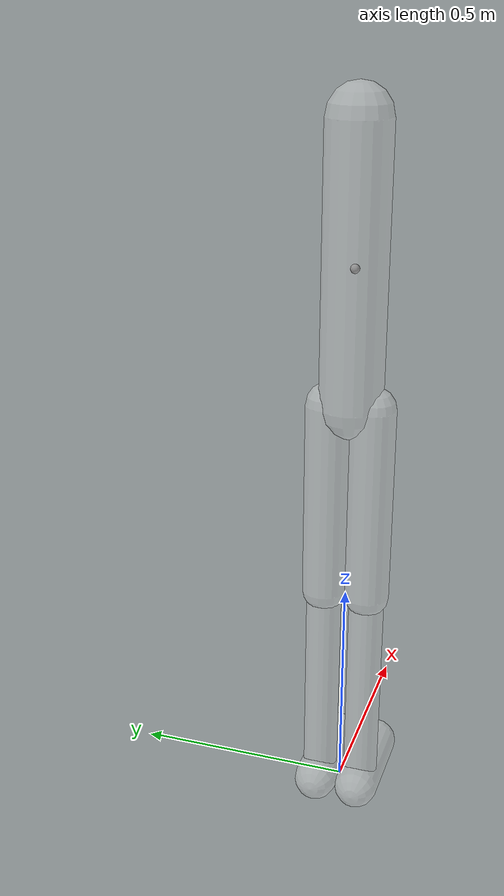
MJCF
<mujoco model="walker">
  <!-- Adopted from the MJPC walker task
   https://github.com/google-deepmind/mujoco_mpc/tree/main/mjpc/tasks/walker``
   -->
  <option timestep="0.01" iterations="1" ls_iterations="6">
    <flag eulerdamp="disable"/>
  </option>

  <custom>
    <numeric data="15" name="max_contact_points"/>
    <numeric data="10" name="max_geom_pairs"/>
  </custom>

  <default>
    <joint damping=".1" armature="0.01" limited="true" />
    <geom contype="1" conaffinity="0" friction=".5" solref="0.02 1.0" solimp="0.0 0.95 0.01"/>
    <motor ctrlrange="-1 1" ctrllimited="true"/>
    <site size="0.01"/>
    <default class="walker">
      <geom type="capsule" rgba="1 1 1 0.3"/>
      <joint axis="0 -1 0"/>
    </default>
  </default>

  <worldbody>
    <body name="torso" pos="0 0 1.25" childclass="walker">
      <light name="light" pos="0 0 2" mode="trackcom"/>
      <camera name="floating"  pos="0 -2 0" xyaxes="1 0 0 0 0 1" mode="trackcom" fovy="90"/>
      <joint name="rootz" axis="0 0 1" type="slide" limited="false" armature="0" damping="0"/>
      <joint name="rootx" axis="1 0 0" type="slide" limited="false" armature="0" damping="0"/>
      <joint name="rooty" axis="0 1 0" type="hinge" limited="false" armature="0" damping="0"/>
      <geom name="torso" size="0.07 0.3"/>
      <site name="torso_site" pos="0 0 0" size="0.01"/>
      <body name="right_thigh" pos="0 -.05 -0.3">
        <joint name="right_hip" range="-20 100"/>
        <geom name="right_thigh" pos="0 0 -0.225" size="0.05 0.225"/>
        <body name="right_leg" pos="0 0 -0.7">
          <joint name="right_knee" pos="0 0 0.25" range="-150 0"/>
          <geom name="right_leg" size="0.04 0.25"/>
          <body name="right_foot" pos="0.06 0 -0.25">
            <joint name="right_ankle" pos="-0.06 0 0" range="-45 45"/>
            <geom name="right_foot" zaxis="1 0 0" size="0.05 0.1"/>
          </body>
        </body>
      </body>
      <body name="left_thigh" pos="0 .05 -0.3" >
        <joint name="left_hip" range="-20 100"/>
        <geom name="left_thigh" pos="0 0 -0.225" size="0.05 0.225"/>
        <body name="left_leg" pos="0 0 -0.7">
          <joint name="left_knee" pos="0 0 0.25" range="-150 0"/>
          <geom name="left_leg" size="0.04 0.25"/>
          <body name="left_foot" pos="0.06 0 -0.25">
            <joint name="left_ankle" pos="-0.06 0 0" range="-45 45"/>
            <geom name="left_foot" zaxis="1 0 0" size="0.05 0.1"/>
          </body>
        </body>
      </body>
    </body>
  </worldbody>

  <sensor>
    <framepos      name="torso_position" objtype="xbody" objname="torso"/>
    <subtreelinvel name="torso_subtreelinvel" body="torso"/>
    <framezaxis    name="torso_zaxis" objtype="xbody" objname="torso"/>
  </sensor>

  <actuator>
    <motor name="right_hip" joint="right_hip" gear="100"/>
    <motor name="right_knee" joint="right_knee" gear="50"/>
    <motor name="right_ankle" joint="right_ankle" gear="20"/>
    <motor name="left_hip" joint="left_hip" gear="100"/>
    <motor name="left_knee" joint="left_knee" gear="50"/>
    <motor name="left_ankle" joint="left_ankle" gear="20"/>
  </actuator>
</mujoco>
